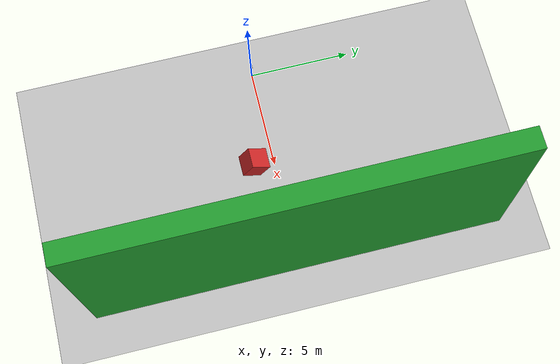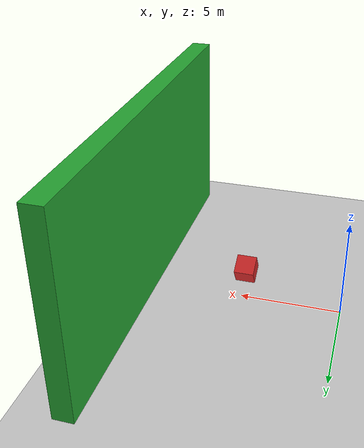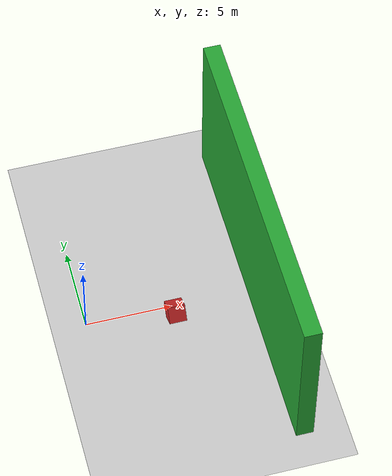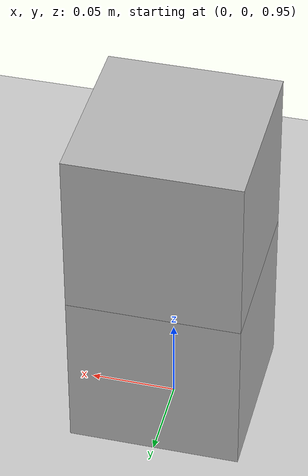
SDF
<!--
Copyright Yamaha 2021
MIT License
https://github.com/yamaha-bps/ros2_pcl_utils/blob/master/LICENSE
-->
<sdf version="1.7">
 <world name="camera_test">
  <light name="sun" type="directional">
   <pose>0 0 10 0 -0 0</pose>
   <diffuse>0.8 0.8 0.8 1</diffuse>
   <specular>0.2 0.2 0.2 1</specular>
   <attenuation>
    <range>1000</range>
    <constant>0.9</constant>
    <linear>0.01</linear>
    <quadratic>0.001</quadratic>
   </attenuation>
   <direction>0.5 0.1 -0.9</direction>
   <spot><inner_angle>0</inner_angle><outer_angle>0</outer_angle><falloff>0</falloff></spot>
  </light>
  <gravity>0 0 -9.8</gravity>
  <physics type="ode">
   <max_step_size>0.001</max_step_size>
   <real_time_factor>1</real_time_factor>
   <real_time_update_rate>1000</real_time_update_rate>
  </physics>
  <scene><ambient>0.4 0.4 0.4 1</ambient><background>0.7 0.7 0.7 1</background><shadows>1</shadows></scene>
  <model name="wall">
   <static>1</static>
   <pose>10 0 5 0 0 0</pose>
   <link name="link">
    <collision name="collision"><geometry><box><size>1 20 10</size></box></geometry></collision>
    <visual name="visual">
     <geometry><box><size>1 20 10</size></box></geometry>
     <material>
      <script><uri>file://media/materials/scripts/gazebo.material</uri><name>Gazebo/Green</name></script>
     </material>
    </visual>
   </link>
  </model>
  <model name="ground_plane">
   <static>1</static>
   <link name="link">
    <collison name="collision">
     <geometry><plane><normal>0 0 1</normal><size>100 100</size></plane></geometry>
    </collison>
    <visual name="visual">
     <cast_shadows>0</cast_shadows>
     <geometry><plane><normal>0 0 1</normal><size>100 100</size></plane></geometry>
     <material>
      <script><uri>file://media/materials/scripts/gazebo.material</uri><name>Gazebo/Grey</name></script>
     </material>
    </visual>
   </link>
  </model>
  <model name="unit_box">
   <static>1</static>
   <pose>5 -1 1 45 0 0</pose>
   <link name="link">
    <collision name="collision"><geometry><box><size>1 1 1</size></box></geometry></collision>
    <visual name="visual">
     <geometry><box><size>1 1 1</size></box></geometry>
     <material>
      <script><uri>file://media/materials/scripts/gazebo.material</uri><name>Gazebo/Red</name></script>
     </material>
    </visual>
   </link>
  </model>
  <model name="lidar">
   <static>1</static>
   <pose>0 0 1 0 0 0</pose>
   <link name="lidar">
    <visual name="visual"><geometry><box><size>0.1 0.1 0.1</size></box></geometry></visual>
    <sensor name="laser" type="ray">
     <ray>
      <scan>
       <horizontal>
        <samples>1080</samples>
        <resolution>1</resolution>
        <min_angle>-0.8</min_angle>
        <max_angle>0.8</max_angle>
       </horizontal>
       <vertical>
        <samples>8</samples>
        <resolution>1</resolution>
        <min_angle>-0.25</min_angle>
        <max_angle>0.15</max_angle>
       </vertical>
      </scan>
      <range><min>0.15</min><max>25</max><resolution>0.01</resolution></range>
     </ray>
     <plugin name="lidar" filename="libgazebo_ros_ray_sensor.so">
      <ros><namespace>sensors</namespace></ros>
      <output_type>sensor_msgs/PointCloud2</output_type>
     </plugin>
     <always_on>1</always_on>
     <update_rate>30</update_rate>
     <visualize>0</visualize>
    </sensor>
   </link>
  </model>
  <model name="camera">
   <static>1</static>
   <pose>0 0 1.1 0 0 0</pose>
   <link name="camera">
    <visual name="visual"><geometry><box><size>0.1 0.1 0.1</size></box></geometry></visual>
    <sensor name="camera" type="camera">
     <camera>
      <image><width>1024</width><height>768</height><format>R8G8B8</format></image>
      <clip><near>0.05</near><far>300</far></clip>
      <distortion><k1>0.0</k1><k2>0.0</k2><k3>0.0</k3><p1>0.0</p1><p2>0.0</p2></distortion>
      <horizontal_fov>0.8</horizontal_fov>
     </camera>
     <plugin name="camera_plugin" filename="libgazebo_ros_camera.so">
      <ros><namespace>sensors</namespace></ros>
     </plugin>
     <always_on>1</always_on>
     <update_rate>30</update_rate>
     <visualize>0</visualize>
    </sensor>
   </link>
  </model>
 </world>
</sdf>
